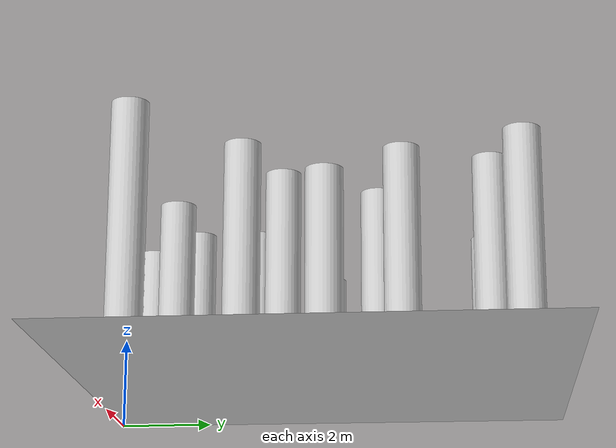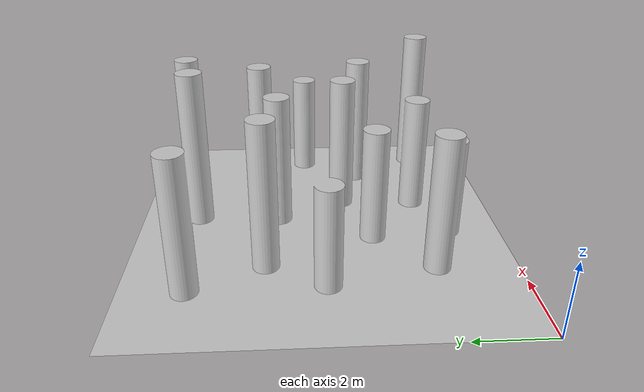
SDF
<?xml version="1.0" ?>
<sdf version="1.9">
  <model name="world_15_10">
    <static>true</static>
    <link name="link">
      <collision name="collision">
        <geometry>
          <mesh>
            <uri>model://world_15_10/meshes/world_15_10.stl</uri>
          </mesh>
        </geometry>
      </collision>
      <visual name="visual">
        <geometry>
          <mesh>
            <uri>model://world_15_10/meshes/world_15_10.stl</uri>
          </mesh>
        </geometry>
        <material>
            <ambient>0.8 0.8 0.8 1</ambient>
            <diffuse>0.8 0.8 0.8 1</diffuse>
            <specular>0.8 0.8 0.8 1</specular>
        </material>
      </visual>
    </link>
  </model>
</sdf>
